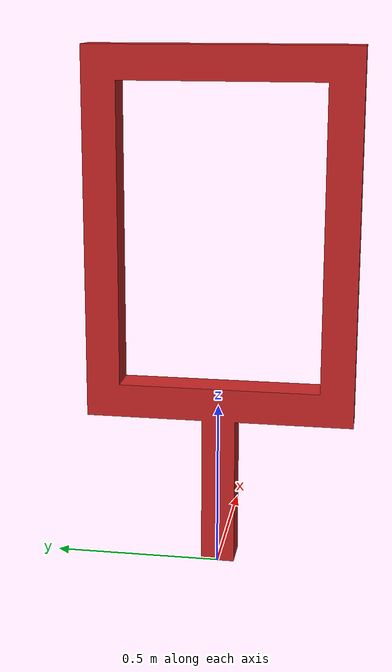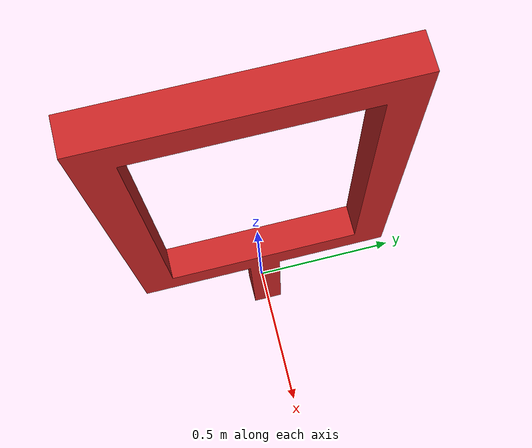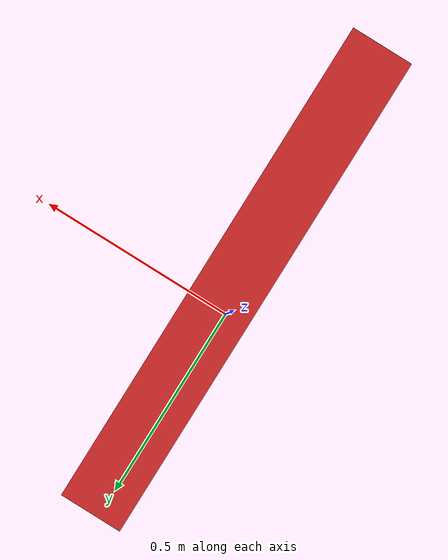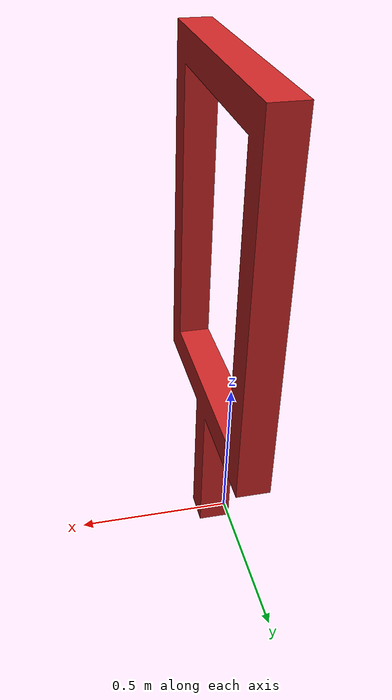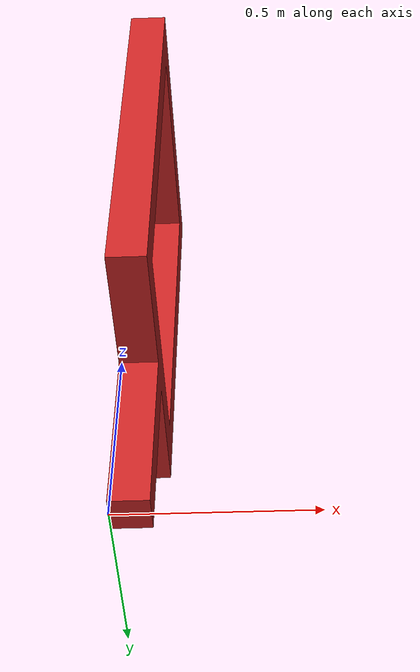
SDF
<?xml version='1.0'?>
<sdf version='1.7'>
  <model name='sqaure_window_2025_small'>
    <link name='link'>
      <self_collide>0</self_collide>
      <inertial>
        <pose>0 0 0 0 -0 0</pose>
        <inertia>
          <ixx>1</ixx>
          <ixy>0</ixy>
          <ixz>0</ixz>
          <iyy>1</iyy>
          <iyz>0</iyz>
          <izz>1</izz>
        </inertia>
        <mass>1</mass>
      </inertial>
      <enable_wind>0</enable_wind>
      <kinematic>0</kinematic>
      <pose>0 0 0 0 -0 0</pose>
      <visual name='visual'>
        <geometry>
          <mesh>
            <scale>1 1 1</scale>
            <uri>model://sqaure_window_2025_small/meshes/0609.stl</uri>
          </mesh>
        </geometry>
        <material>
          <script>
            <name>Gazebo/Red</name>
            <uri>file://media/materials/scripts/gazebo.material</uri>
          </script>
          <shader type='pixel'/>
        </material>
        <pose>0 0 0 0 -0 0</pose>
        <transparency>0</transparency>
        <cast_shadows>1</cast_shadows>
      </visual>
      <collision name='collision'>
        <laser_retro>0</laser_retro>
        <max_contacts>10</max_contacts>
        <pose>0 0 0 0 -0 0</pose>
        <geometry>
          <mesh>
            <uri>/home/yyf/2025futureaircraftcompetition/Simulation/sunray_simulator/models/scence_models/sqaure_window_2025_small/meshes/0609.stl</uri>
            <scale>1 1 1</scale>
          </mesh>
        </geometry>
        <surface>
          <friction>
            <ode>
              <mu>1</mu>
              <mu2>1</mu2>
              <fdir1>0 0 0</fdir1>
              <slip1>0</slip1>
              <slip2>0</slip2>
            </ode>
            <torsional>
              <coefficient>1</coefficient>
              <patch_radius>0</patch_radius>
              <surface_radius>0</surface_radius>
              <use_patch_radius>1</use_patch_radius>
              <ode>
                <slip>0</slip>
              </ode>
            </torsional>
          </friction>
          <bounce>
            <restitution_coefficient>0</restitution_coefficient>
            <threshold>1e+06</threshold>
          </bounce>
          <contact>
            <collide_without_contact>0</collide_without_contact>
            <collide_without_contact_bitmask>1</collide_without_contact_bitmask>
            <collide_bitmask>1</collide_bitmask>
            <ode>
              <soft_cfm>0</soft_cfm>
              <soft_erp>0.2</soft_erp>
              <kp>1e+13</kp>
              <kd>1</kd>
              <max_vel>0.01</max_vel>
              <min_depth>0</min_depth>
            </ode>
            <bullet>
              <split_impulse>1</split_impulse>
              <split_impulse_penetration_threshold>-0.01</split_impulse_penetration_threshold>
              <soft_cfm>0</soft_cfm>
              <soft_erp>0.2</soft_erp>
              <kp>1e+13</kp>
              <kd>1</kd>
            </bullet>
          </contact>
        </surface>
      </collision>
    </link>
    <static>1</static>
    <allow_auto_disable>1</allow_auto_disable>
  </model>
</sdf>
